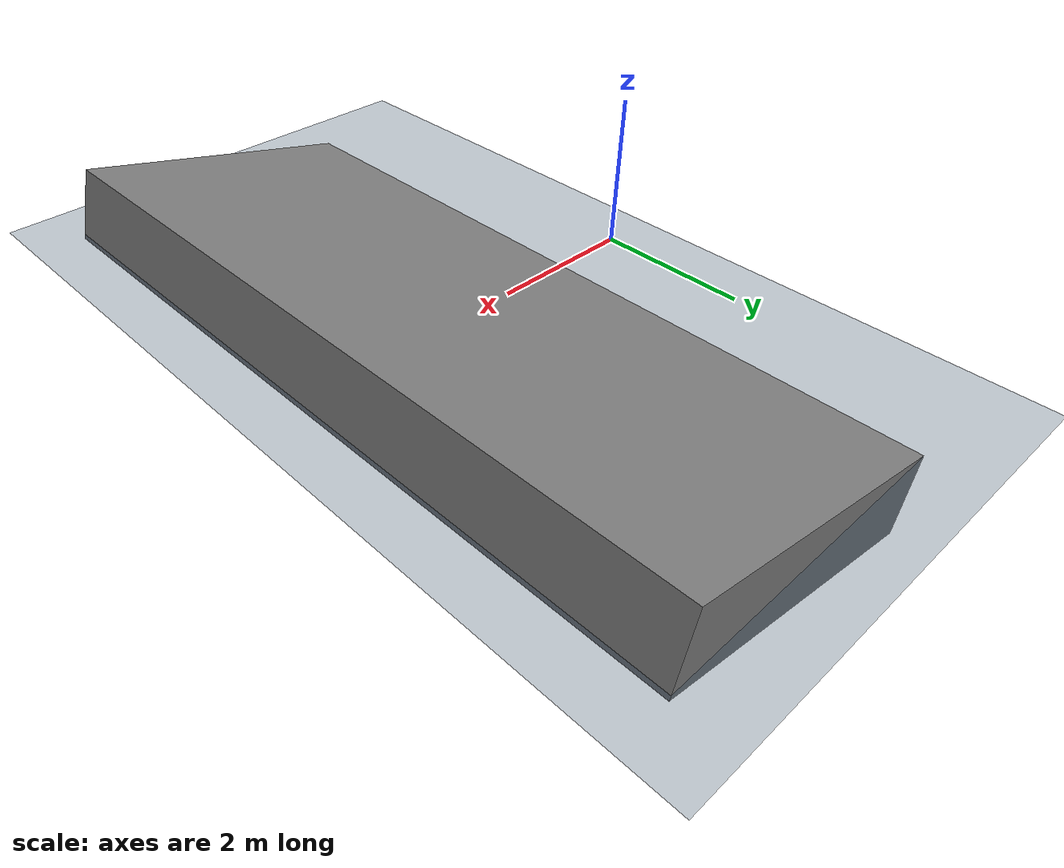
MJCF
<!-- slope=0.1+0.8*0.5/0.9=0.54, 28.56 degree -->
<mujoco model="slope_5">
  <statistic center="0 0 0.1" extent="0.8" />

  <visual>
    <headlight diffuse="0.6 0.6 0.6" ambient="0.3 0.3 0.3" specular="0 0 0" />
    <rgba haze="0.15 0.25 0.35 1" />
    <global azimuth="-130" elevation="-20" />
    <global offwidth="1920" offheight="1080"/>
  </visual>

  <asset>
    <texture type="skybox" builtin="gradient" rgb1="0.3 0.5 0.7" rgb2="0 0 0" width="512" height="3072" />
    <texture type="2d" name="groundplane" builtin="checker" mark="edge" rgb1="0.2 0.3 0.4" rgb2="0.1 0.2 0.3" markrgb="0.8 0.8 0.8" width="300" height="300" />
    <material name="groundplane" texture="groundplane" texuniform="true" texrepeat="5 5" reflectance="0.0" />
  </asset>

  <worldbody>
    <light pos="0 0 1.5" dir="0 0 -1" directional="true" />
    <geom name="floor" size="0 0 0.05" type="plane" material="groundplane" />
    <geom pos="3.1101988717280613 0.0 -0.03579718002765875" type="box" size="2.050419643960795 5.0 0.5" quat="0.993833508538892 0.0 -0.110882628509953 0.0" />
  </worldbody>
</mujoco>
